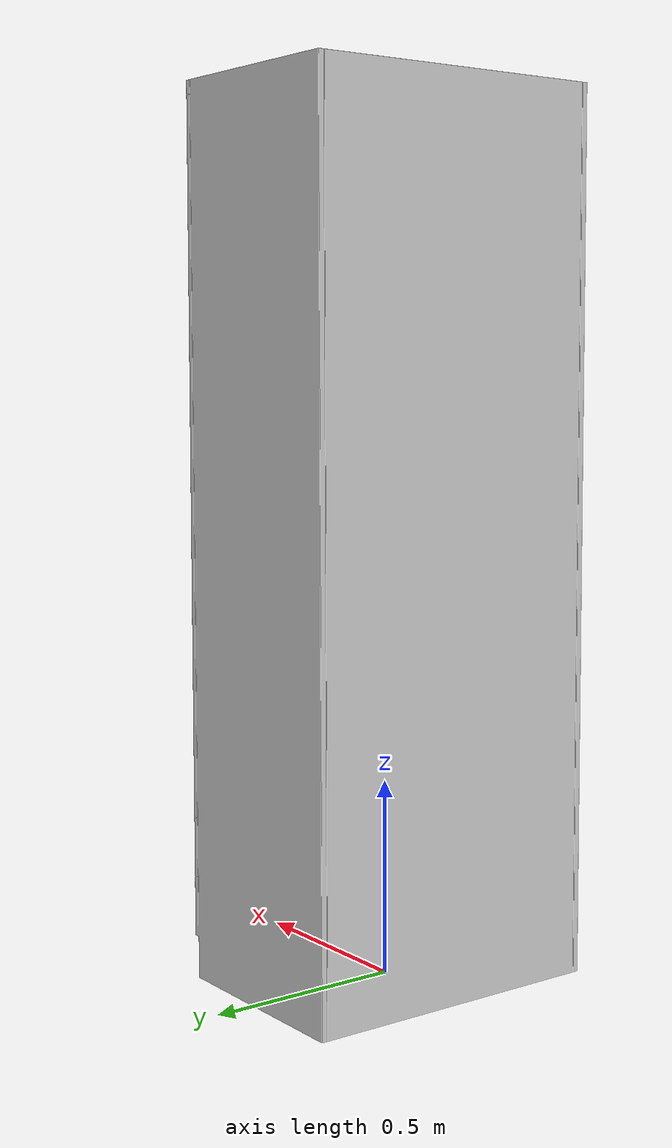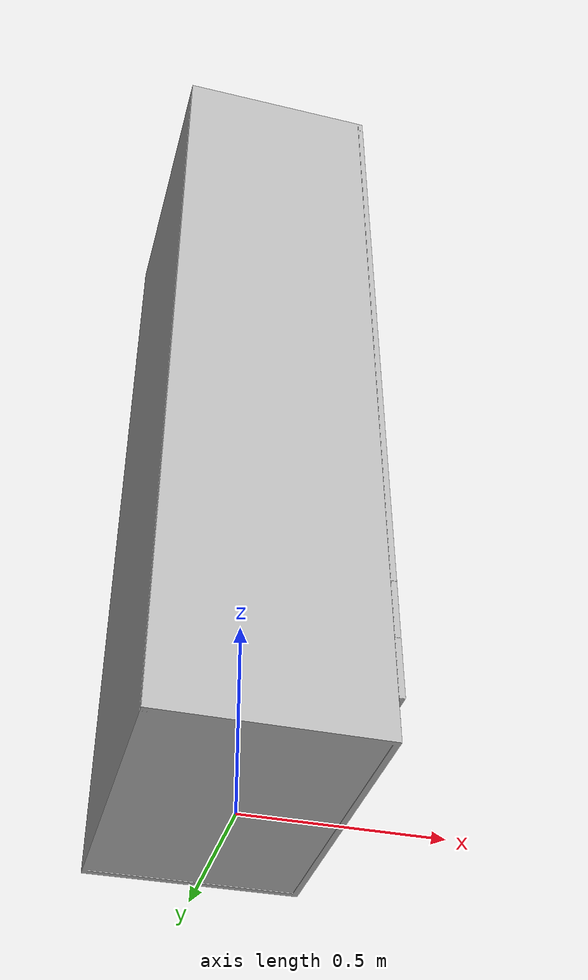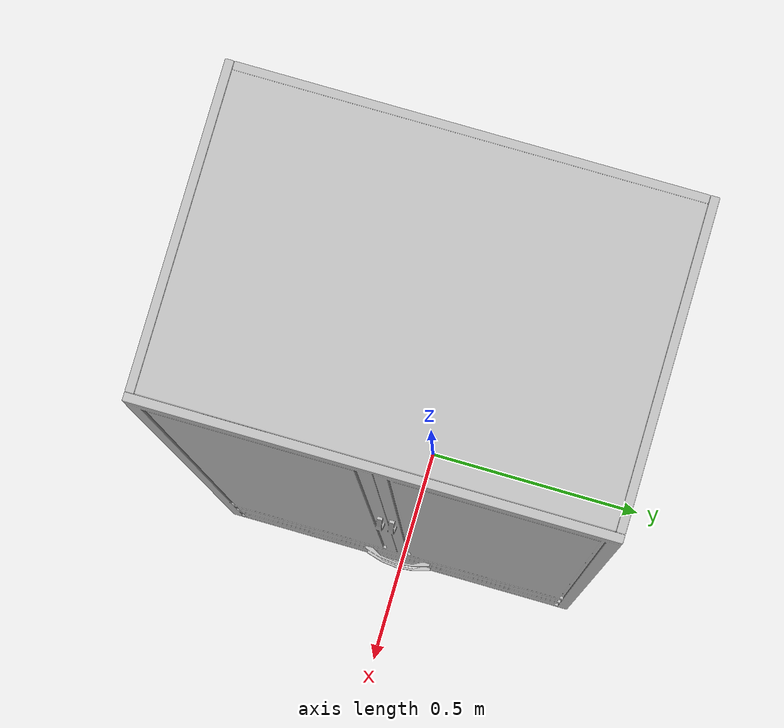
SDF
<?xml version='1.0'?>
<sdf version='1.4'>
  <model name='383'>
    <pose>0 0 0 0 0 0</pose>
    <static>true</static>
    <link name='link'>
      <collision name='collision'>
        <pose>0 0 0 0 0 0</pose>
        <geometry>
          <box>
            <size>0.579962 0.8 2</size>
          </box>
        </geometry>
      </collision>
      <visual name='visual'>
        <pose>0 0 0 0 0 0</pose>
        <geometry>
          <mesh><uri>model://383/383.dae</uri></mesh>
        </geometry>
      </visual>
    </link>
  </model>
</sdf>
